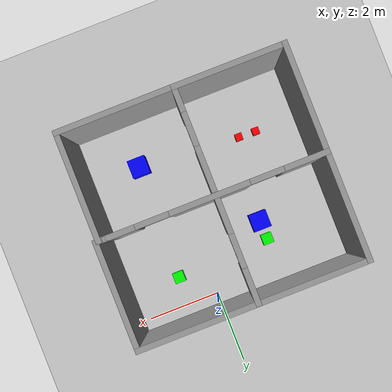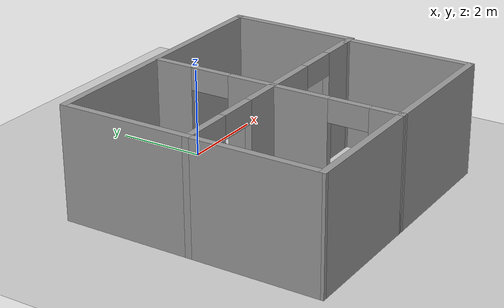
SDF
<sdf version="1.7">
 <world name="default">
  <light name="sun" type="directional">
   <pose>0 0 10 0 -0 0</pose>
   <diffuse>0.8 0.8 0.8 1</diffuse>
   <specular>0.2 0.2 0.2 1</specular>
   <attenuation>
    <range>1000</range>
    <constant>0.9</constant>
    <linear>0.01</linear>
    <quadratic>0.001</quadratic>
   </attenuation>
   <direction>-0.5 0.1 -0.9</direction>
   <spot><inner_angle>0</inner_angle><outer_angle>0</outer_angle><falloff>0</falloff></spot>
  </light>
  <model name="ground_plane">
   <static>1</static>
   <link name="link">
    <collision name="collision">
     <geometry><plane><normal>0 0 1</normal><size>100 100</size></plane></geometry>
     <surface>
      <contact><collide_bitmask>65535</collide_bitmask></contact>
      <friction><ode><mu>100</mu><mu2>50</mu2></ode></friction>
     </surface>
    </collision>
    <visual name="visual">
     <cast_shadows>0</cast_shadows>
     <geometry><plane><normal>0 0 1</normal><size>100 100</size></plane></geometry>
     <material>
      <script><uri>file://media/materials/scripts/gazebo.material</uri><name>Gazebo/Grey</name></script>
     </material>
    </visual>
   </link>
  </model>
  <gravity>0 0 -9.8</gravity>
  <magnetic_field>6e-06 2.3e-05 -4.2e-05</magnetic_field>
  <atmosphere type="adiabatic"/>
  <physics type="ode">
   <max_step_size>0.001</max_step_size>
   <real_time_factor>1</real_time_factor>
   <real_time_update_rate>1000</real_time_update_rate>
  </physics>
  <scene><ambient>0.4 0.4 0.4 1</ambient><background>0.7 0.7 0.7 1</background><shadows>1</shadows></scene>
  <spherical_coordinates>
   <surface_model>EARTH_WGS84</surface_model>
   <latitude_deg>0</latitude_deg>
   <longitude_deg>0</longitude_deg>
   <elevation>0</elevation>
   <heading_deg>0</heading_deg>
  </spherical_coordinates>
  <model name="World_Nav">
   <pose>-0.790089 -2.50358 0 0 -0 0</pose>
   <link name="Wall_0">
    <pose>-0.124911 0.003582 0 0 -0 0</pose>
    <visual name="Wall_0_Visual_0">
     <pose>-2.39688 0 1.25 0 -0 0</pose>
     <geometry><box><size>1.20624 0.15 2.5</size></box></geometry>
     <material>
      <script><uri>file://media/materials/scripts/gazebo.material</uri><name>Gazebo/Grey</name></script>
      <ambient>1 1 1 1</ambient>
     </material>
     <meta><layer>0</layer></meta>
    </visual>
    <collision name="Wall_0_Collision_0">
     <geometry><box><size>1.20624 0.15 2.5</size></box></geometry>
     <pose>-2.39688 0 1.25 0 -0 0</pose>
    </collision>
    <visual name="Wall_0_Visual_1">
     <pose>0.177114 0 1.25 0 -0 0</pose>
     <geometry><box><size>2.14175 0.15 2.5</size></box></geometry>
     <material>
      <script><uri>file://media/materials/scripts/gazebo.material</uri><name>Gazebo/Grey</name></script>
      <ambient>1 1 1 1</ambient>
     </material>
     <meta><layer>0</layer></meta>
    </visual>
    <collision name="Wall_0_Collision_1">
     <geometry><box><size>2.14175 0.15 2.5</size></box></geometry>
     <pose>0.177114 0 1.25 0 -0 0</pose>
    </collision>
    <visual name="Wall_0_Visual_2">
     <pose>2.57399 0 1.25 0 -0 0</pose>
     <geometry><box><size>0.852011 0.15 2.5</size></box></geometry>
     <material>
      <script><uri>file://media/materials/scripts/gazebo.material</uri><name>Gazebo/Grey</name></script>
      <ambient>1 1 1 1</ambient>
     </material>
     <meta><layer>0</layer></meta>
    </visual>
    <collision name="Wall_0_Collision_2">
     <geometry><box><size>0.852011 0.15 2.5</size></box></geometry>
     <pose>2.57399 0 1.25 0 -0 0</pose>
    </collision>
    <visual name="Wall_0_Visual_3">
     <pose>-1.34376 0 2.25 0 -0 0</pose>
     <geometry><box><size>0.9 0.15 0.5</size></box></geometry>
     <material>
      <script><uri>file://media/materials/scripts/gazebo.material</uri><name>Gazebo/Grey</name></script>
      <ambient>1 1 1 1</ambient>
     </material>
     <meta><layer>0</layer></meta>
    </visual>
    <collision name="Wall_0_Collision_3">
     <geometry><box><size>0.9 0.15 0.5</size></box></geometry>
     <pose>-1.34376 0 2.25 0 -0 0</pose>
    </collision>
    <visual name="Wall_0_Visual_4">
     <pose>1.69799 0 2.25 0 -0 0</pose>
     <geometry><box><size>0.9 0.15 0.5</size></box></geometry>
     <material>
      <script><uri>file://media/materials/scripts/gazebo.material</uri><name>Gazebo/Grey</name></script>
      <ambient>1 1 1 1</ambient>
     </material>
     <meta><layer>0</layer></meta>
    </visual>
    <collision name="Wall_0_Collision_4">
     <geometry><box><size>0.9 0.15 0.5</size></box></geometry>
     <pose>1.69799 0 2.25 0 -0 0</pose>
    </collision>
   </link>
   <link name="Wall_11">
    <pose>-0.121575 1.4216 0 0 -0 1.5708</pose>
    <visual name="Wall_11_Visual_0">
     <pose>-0.951195 0 1.25 0 -0 0</pose>
     <geometry><box><size>1.09761 0.15 2.5</size></box></geometry>
     <material>
      <script><uri>file://media/materials/scripts/gazebo.material</uri><name>Gazebo/Grey</name></script>
      <ambient>1 1 1 1</ambient>
     </material>
     <meta><layer>0</layer></meta>
    </visual>
    <collision name="Wall_11_Collision_0">
     <geometry><box><size>1.09761 0.15 2.5</size></box></geometry>
     <pose>-0.951195 0 1.25 0 -0 0</pose>
    </collision>
    <visual name="Wall_11_Visual_1">
     <pose>0.998805 0 1.25 0 -0 0</pose>
     <geometry><box><size>1.00239 0.15 2.5</size></box></geometry>
     <material>
      <script><uri>file://media/materials/scripts/gazebo.material</uri><name>Gazebo/Grey</name></script>
      <ambient>1 1 1 1</ambient>
     </material>
     <meta><layer>0</layer></meta>
    </visual>
    <collision name="Wall_11_Collision_1">
     <geometry><box><size>1.00239 0.15 2.5</size></box></geometry>
     <pose>0.998805 0 1.25 0 -0 0</pose>
    </collision>
    <visual name="Wall_11_Visual_2">
     <pose>0.04761 0 2.25 0 -0 0</pose>
     <geometry><box><size>0.9 0.15 0.5</size></box></geometry>
     <material>
      <script><uri>file://media/materials/scripts/gazebo.material</uri><name>Gazebo/Grey</name></script>
      <ambient>1 1 1 1</ambient>
     </material>
     <meta><layer>0</layer></meta>
    </visual>
    <collision name="Wall_11_Collision_2">
     <geometry><box><size>0.9 0.15 0.5</size></box></geometry>
     <pose>0.04761 0 2.25 0 -0 0</pose>
    </collision>
   </link>
   <link name="Wall_13">
    <collision name="Wall_13_Collision">
     <geometry><box><size>3 0.15 2.5</size></box></geometry>
     <pose>0 0 1.25 0 -0 0</pose>
    </collision>
    <visual name="Wall_13_Visual">
     <pose>0 0 1.25 0 -0 0</pose>
     <geometry><box><size>3 0.15 2.5</size></box></geometry>
     <material>
      <script><uri>file://media/materials/scripts/gazebo.material</uri><name>Gazebo/Grey</name></script>
      <ambient>1 1 1 1</ambient>
     </material>
     <meta><layer>0</layer></meta>
    </visual>
    <pose>-3.04991 -1.42142 0 0 -0 -1.5708</pose>
   </link>
   <link name="Wall_14">
    <collision name="Wall_14_Collision">
     <geometry><box><size>3.07834 0.15 2.5</size></box></geometry>
     <pose>0 0 1.25 0 -0 0</pose>
    </collision>
    <visual name="Wall_14_Visual">
     <pose>0 0 1.25 0 -0 0</pose>
     <geometry><box><size>3.07834 0.15 2.5</size></box></geometry>
     <material>
      <script><uri>file://media/materials/scripts/gazebo.material</uri><name>Gazebo/Grey</name></script>
      <ambient>1 1 1 1</ambient>
     </material>
     <meta><layer>0</layer></meta>
    </visual>
    <pose>-1.58574 -2.84991 0 0 -0 -0.002386</pose>
   </link>
   <link name="Wall_15">
    <collision name="Wall_15_Collision">
     <geometry><box><size>3.25 0.15 2.5</size></box></geometry>
     <pose>0 0 1.25 0 -0 0</pose>
    </collision>
    <visual name="Wall_15_Visual">
     <pose>0 0 1.25 0 -0 0</pose>
     <geometry><box><size>3.25 0.15 2.5</size></box></geometry>
     <material>
      <script><uri>file://media/materials/scripts/gazebo.material</uri><name>Gazebo/Grey</name></script>
      <ambient>1 1 1 1</ambient>
     </material>
     <meta><layer>0</layer></meta>
    </visual>
    <pose>1.42843 -2.8534 0 0 -0 0</pose>
   </link>
   <link name="Wall_17">
    <collision name="Wall_17_Collision">
     <geometry><box><size>3 0.15 2.5</size></box></geometry>
     <pose>0 0 1.25 0 -0 0</pose>
    </collision>
    <visual name="Wall_17_Visual">
     <pose>0 0 1.25 0 -0 0</pose>
     <geometry><box><size>3 0.15 2.5</size></box></geometry>
     <material>
      <script><uri>file://media/materials/scripts/gazebo.material</uri><name>Gazebo/Grey</name></script>
      <ambient>1 1 1 1</ambient>
     </material>
     <meta><layer>0</layer></meta>
    </visual>
    <pose>2.97843 -1.4284 0 0 -0 1.5708</pose>
   </link>
   <link name="Wall_18">
    <collision name="Wall_18_Collision">
     <geometry><box><size>0.328473 0.15 2.5</size></box></geometry>
     <pose>0 0 1.25 0 -0 0</pose>
    </collision>
    <visual name="Wall_18_Visual">
     <pose>0 0 1.25 0 -0 0</pose>
     <geometry><box><size>0.328473 0.15 2.5</size></box></geometry>
     <material>
      <script><uri>file://media/materials/scripts/gazebo.material</uri><name>Gazebo/Grey</name></script>
      <ambient>1 1 1 1</ambient>
     </material>
     <meta><layer>0</layer></meta>
    </visual>
    <pose>2.88926 8.9e-05 0 0 -0 3.10244</pose>
   </link>
   <link name="Wall_21">
    <collision name="Wall_21_Collision">
     <geometry><box><size>3 0.15 2.5</size></box></geometry>
     <pose>0 0 1.25 0 -0 0</pose>
    </collision>
    <visual name="Wall_21_Visual">
     <pose>0 0 1.25 0 -0 0</pose>
     <geometry><box><size>3 0.15 2.5</size></box></geometry>
     <material>
      <script><uri>file://media/materials/scripts/gazebo.material</uri><name>Gazebo/Grey</name></script>
      <ambient>1 1 1 1</ambient>
     </material>
     <meta><layer>0</layer></meta>
    </visual>
    <pose>-3.04991 1.42858 0 0 -0 1.5708</pose>
   </link>
   <link name="Wall_22">
    <collision name="Wall_22_Collision">
     <geometry><box><size>6.25 0.15 2.5</size></box></geometry>
     <pose>0 0 1.25 0 -0 0</pose>
    </collision>
    <visual name="Wall_22_Visual">
     <pose>0 0 1.25 0 -0 0</pose>
     <geometry><box><size>6.25 0.15 2.5</size></box></geometry>
     <material>
      <script><uri>file://media/materials/scripts/gazebo.material</uri><name>Gazebo/Grey</name></script>
      <ambient>1 1 1 1</ambient>
     </material>
     <meta><layer>0</layer></meta>
    </visual>
    <pose>8.9e-05 2.85358 0 0 -0 0</pose>
   </link>
   <link name="Wall_23">
    <collision name="Wall_23_Collision">
     <geometry><box><size>3 0.15 2.5</size></box></geometry>
     <pose>0 0 1.25 0 -0 0</pose>
    </collision>
    <visual name="Wall_23_Visual">
     <pose>0 0 1.25 0 -0 0</pose>
     <geometry><box><size>3 0.15 2.5</size></box></geometry>
     <material>
      <script><uri>file://media/materials/scripts/gazebo.material</uri><name>Gazebo/Grey</name></script>
      <ambient>1 1 1 1</ambient>
     </material>
     <meta><layer>0</layer></meta>
    </visual>
    <pose>3.05009 1.42858 0 0 -0 -1.5708</pose>
   </link>
   <link name="Wall_7">
    <pose>-0.121575 -1.4284 0 0 -0 -1.5708</pose>
    <visual name="Wall_7_Visual_0">
     <pose>-0.819282 0 1.25 0 -0 0</pose>
     <geometry><box><size>1.36144 0.15 2.5</size></box></geometry>
     <material>
      <script><uri>file://media/materials/scripts/gazebo.material</uri><name>Gazebo/Grey</name></script>
      <ambient>1 1 1 1</ambient>
     </material>
     <meta><layer>0</layer></meta>
    </visual>
    <collision name="Wall_7_Collision_0">
     <geometry><box><size>1.36144 0.15 2.5</size></box></geometry>
     <pose>-0.819282 0 1.25 0 -0 0</pose>
    </collision>
    <visual name="Wall_7_Visual_1">
     <pose>1.13072 0 1.25 0 -0 0</pose>
     <geometry><box><size>0.738563 0.15 2.5</size></box></geometry>
     <material>
      <script><uri>file://media/materials/scripts/gazebo.material</uri><name>Gazebo/Grey</name></script>
      <ambient>1 1 1 1</ambient>
     </material>
     <meta><layer>0</layer></meta>
    </visual>
    <collision name="Wall_7_Collision_1">
     <geometry><box><size>0.738563 0.15 2.5</size></box></geometry>
     <pose>1.13072 0 1.25 0 -0 0</pose>
    </collision>
    <visual name="Wall_7_Visual_2">
     <pose>0.311437 0 2.25 0 -0 0</pose>
     <geometry><box><size>0.9 0.15 0.5</size></box></geometry>
     <material>
      <script><uri>file://media/materials/scripts/gazebo.material</uri><name>Gazebo/Grey</name></script>
      <ambient>1 1 1 1</ambient>
     </material>
     <meta><layer>0</layer></meta>
    </visual>
    <collision name="Wall_7_Collision_2">
     <geometry><box><size>0.9 0.15 0.5</size></box></geometry>
     <pose>0.311437 0 2.25 0 -0 0</pose>
    </collision>
   </link>
   <static>1</static>
  </model>
  <model name="Box_medium_green">
   <link name="link_0">
    <inertial>
     <mass>1</mass>
     <inertia>
      <ixx>0.166667</ixx>
      <ixy>0</ixy>
      <ixz>0</ixz>
      <iyy>0.166667</iyy>
      <iyz>0</iyz>
      <izz>0.166667</izz>
     </inertia>
    </inertial>
    <visual name="visual">
     <geometry><box><size>0.3 0.3 0.3</size></box></geometry>
     <material>
      <lighting>1</lighting>
      <script><uri>file://media/materials/scripts/gazebo.material</uri><name>Gazebo/Grey</name></script>
      <shader type="pixel"><normal_map>__default__</normal_map></shader>
      <ambient>0 1 0 0</ambient>
      <diffuse>0.7 0.7 0.7 1</diffuse>
      <specular>0.01 0.01 0.01 1</specular>
      <emissive>0 0 0 1</emissive>
     </material>
    </visual>
    <collision name="collision">
     <geometry><box><size>0.3 0.3 0.3</size></box></geometry>
     <surface>
      <friction>
       <ode><mu>1</mu><mu2>1</mu2><fdir1>0 0 0</fdir1><slip1>0</slip1><slip2>0</slip2></ode>
       <torsional>
        <coefficient>1</coefficient>
        <patch_radius>0</patch_radius>
        <surface_radius>0</surface_radius>
        <use_patch_radius>1</use_patch_radius>
        <ode><slip>0</slip></ode>
       </torsional>
      </friction>
      <bounce><restitution_coefficient>0</restitution_coefficient><threshold>1e+06</threshold></bounce>
      <contact>
       <collide_without_contact>0</collide_without_contact>
       <collide_without_contact_bitmask>1</collide_without_contact_bitmask>
       <collide_bitmask>1</collide_bitmask>
       <ode>
        <soft_cfm>0</soft_cfm>
        <soft_erp>0.2</soft_erp>
        <kp>1e+13</kp>
        <kd>1</kd>
        <max_vel>0.01</max_vel>
        <min_depth>0</min_depth>
       </ode>
       <bullet>
        <split_impulse>1</split_impulse>
        <split_impulse_penetration_threshold>-0.01</split_impulse_penetration_threshold>
        <soft_cfm>0</soft_cfm>
        <soft_erp>0.2</soft_erp>
        <kp>1e+13</kp>
        <kd>1</kd>
       </bullet>
      </contact>
     </surface>
    </collision>
   </link>
   <static>0</static>
   <pose>0.828705 -0.82662 0.15 0 -0 0</pose>
  </model>
  <model name="Box_big_blue">
   <link name="link">
    <inertial>
     <mass>1</mass>
     <inertia>
      <ixx>0.166667</ixx>
      <ixy>0</ixy>
      <ixz>0</ixz>
      <iyy>0.166667</iyy>
      <iyz>0</iyz>
      <izz>0.166667</izz>
     </inertia>
    </inertial>
    <visual name="visual">
     <geometry><box><size>0.5 0.5 0.5</size></box></geometry>
     <material>
      <script><name>Gazebo/Grey</name><uri>file://media/materials/scripts/gazebo.material</uri></script>
      <shader type="pixel"><normal_map>__default__</normal_map></shader>
      <ambient>0 0 1 1</ambient>
      <diffuse>0.7 0.7 0.7 1</diffuse>
      <specular>0.01 0.01 0.01 1</specular>
      <emissive>0 0 0 1</emissive>
     </material>
    </visual>
    <collision name="collision">
     <geometry><box><size>0.5 0.5 0.5</size></box></geometry>
     <surface>
      <friction>
       <ode><mu>1</mu><mu2>1</mu2><fdir1>0 0 0</fdir1><slip1>0</slip1><slip2>0</slip2></ode>
       <torsional>
        <coefficient>1</coefficient>
        <patch_radius>0</patch_radius>
        <surface_radius>0</surface_radius>
        <use_patch_radius>1</use_patch_radius>
        <ode><slip>0</slip></ode>
       </torsional>
      </friction>
      <bounce><restitution_coefficient>0</restitution_coefficient><threshold>1e+06</threshold></bounce>
      <contact>
       <collide_without_contact>0</collide_without_contact>
       <collide_without_contact_bitmask>1</collide_without_contact_bitmask>
       <collide_bitmask>1</collide_bitmask>
       <ode>
        <soft_cfm>0</soft_cfm>
        <soft_erp>0.2</soft_erp>
        <kp>1e+13</kp>
        <kd>1</kd>
        <max_vel>0.01</max_vel>
        <min_depth>0</min_depth>
       </ode>
       <bullet>
        <split_impulse>1</split_impulse>
        <split_impulse_penetration_threshold>-0.01</split_impulse_penetration_threshold>
        <soft_cfm>0</soft_cfm>
        <soft_erp>0.2</soft_erp>
        <kp>1e+13</kp>
        <kd>1</kd>
       </bullet>
      </contact>
     </surface>
    </collision>
   </link>
   <static>0</static>
   <pose>0.744954 -4.05727 0.25 0 -0 0</pose>
  </model>
  <model name="Box_small_red">
   <link name="link_0">
    <inertial>
     <mass>1</mass>
     <inertia>
      <ixx>0.166667</ixx>
      <ixy>0</ixy>
      <ixz>0</ixz>
      <iyy>0.166667</iyy>
      <iyz>0</iyz>
      <izz>0.166667</izz>
     </inertia>
    </inertial>
    <pose>0 -4e-06 0 0 -0 0</pose>
    <visual name="visual">
     <geometry><box><size>0.2 0.2 0.2</size></box></geometry>
     <material>
      <lighting>1</lighting>
      <script><uri>file://media/materials/scripts/gazebo.material</uri><name>Gazebo/Grey</name></script>
      <shader type="pixel"><normal_map>__default__</normal_map></shader>
      <ambient>1 0 0 0</ambient>
      <diffuse>0.7 0.7 0.7 1</diffuse>
      <specular>0.01 0.01 0.01 1</specular>
      <emissive>0 0 0 1</emissive>
     </material>
    </visual>
    <collision name="collision">
     <geometry><box><size>0.2 0.2 0.2</size></box></geometry>
     <surface>
      <friction>
       <ode><mu>1</mu><mu2>1</mu2><fdir1>0 0 0</fdir1><slip1>0</slip1><slip2>0</slip2></ode>
       <torsional>
        <coefficient>1</coefficient>
        <patch_radius>0</patch_radius>
        <surface_radius>0</surface_radius>
        <use_patch_radius>1</use_patch_radius>
        <ode><slip>0</slip></ode>
       </torsional>
      </friction>
      <bounce><restitution_coefficient>0</restitution_coefficient><threshold>1e+06</threshold></bounce>
      <contact>
       <collide_without_contact>0</collide_without_contact>
       <collide_without_contact_bitmask>1</collide_without_contact_bitmask>
       <collide_bitmask>1</collide_bitmask>
       <ode>
        <soft_cfm>0</soft_cfm>
        <soft_erp>0.2</soft_erp>
        <kp>1e+13</kp>
        <kd>1</kd>
        <max_vel>0.01</max_vel>
        <min_depth>0</min_depth>
       </ode>
       <bullet>
        <split_impulse>1</split_impulse>
        <split_impulse_penetration_threshold>-0.01</split_impulse_penetration_threshold>
        <soft_cfm>0</soft_cfm>
        <soft_erp>0.2</soft_erp>
        <kp>1e+13</kp>
        <kd>1</kd>
       </bullet>
      </contact>
     </surface>
    </collision>
   </link>
   <static>0</static>
   <pose>-2.12744 -3.8443 0.099999 -2e-06 5e-06 -2e-06</pose>
  </model>
  <model name="Box_small_red_0">
   <link name="link_0">
    <inertial>
     <mass>1</mass>
     <inertia>
      <ixx>0.166667</ixx>
      <ixy>0</ixy>
      <ixz>0</ixz>
      <iyy>0.166667</iyy>
      <iyz>0</iyz>
      <izz>0.166667</izz>
     </inertia>
    </inertial>
    <pose>0 -4e-06 0 0 -0 0</pose>
    <visual name="visual">
     <geometry><box><size>0.2 0.2 0.2</size></box></geometry>
     <material>
      <lighting>1</lighting>
      <script><uri>file://media/materials/scripts/gazebo.material</uri><name>Gazebo/Grey</name></script>
      <shader type="pixel"><normal_map>__default__</normal_map></shader>
      <ambient>1 0 0 0</ambient>
      <diffuse>0.7 0.7 0.7 1</diffuse>
      <specular>0.01 0.01 0.01 1</specular>
      <emissive>0 0 0 1</emissive>
     </material>
    </visual>
    <collision name="collision">
     <geometry><box><size>0.2 0.2 0.2</size></box></geometry>
     <surface>
      <friction>
       <ode><mu>1</mu><mu2>1</mu2><fdir1>0 0 0</fdir1><slip1>0</slip1><slip2>0</slip2></ode>
       <torsional>
        <coefficient>1</coefficient>
        <patch_radius>0</patch_radius>
        <surface_radius>0</surface_radius>
        <use_patch_radius>1</use_patch_radius>
        <ode><slip>0</slip></ode>
       </torsional>
      </friction>
      <bounce><restitution_coefficient>0</restitution_coefficient><threshold>1e+06</threshold></bounce>
      <contact>
       <collide_without_contact>0</collide_without_contact>
       <collide_without_contact_bitmask>1</collide_without_contact_bitmask>
       <collide_bitmask>1</collide_bitmask>
       <ode>
        <soft_cfm>0</soft_cfm>
        <soft_erp>0.2</soft_erp>
        <kp>1e+13</kp>
        <kd>1</kd>
        <max_vel>0.01</max_vel>
        <min_depth>0</min_depth>
       </ode>
       <bullet>
        <split_impulse>1</split_impulse>
        <split_impulse_penetration_threshold>-0.01</split_impulse_penetration_threshold>
        <soft_cfm>0</soft_cfm>
        <soft_erp>0.2</soft_erp>
        <kp>1e+13</kp>
        <kd>1</kd>
       </bullet>
      </contact>
     </surface>
    </collision>
   </link>
   <static>0</static>
   <pose>-2.62211 -3.82818 0.099999 4e-06 -3e-06 -2e-06</pose>
  </model>
  <model name="Box_medium_green_0">
   <link name="link_0">
    <inertial>
     <mass>1</mass>
     <inertia>
      <ixx>0.166667</ixx>
      <ixy>0</ixy>
      <ixz>0</ixz>
      <iyy>0.166667</iyy>
      <iyz>0</iyz>
      <izz>0.166667</izz>
     </inertia>
    </inertial>
    <visual name="visual">
     <geometry><box><size>0.3 0.3 0.3</size></box></geometry>
     <material>
      <lighting>1</lighting>
      <script><uri>file://media/materials/scripts/gazebo.material</uri><name>Gazebo/Grey</name></script>
      <shader type="pixel"><normal_map>__default__</normal_map></shader>
      <ambient>0 1 0 0</ambient>
      <diffuse>0.7 0.7 0.7 1</diffuse>
      <specular>0.01 0.01 0.01 1</specular>
      <emissive>0 0 0 1</emissive>
     </material>
    </visual>
    <collision name="collision">
     <geometry><box><size>0.3 0.3 0.3</size></box></geometry>
     <surface>
      <friction>
       <ode><mu>1</mu><mu2>1</mu2><fdir1>0 0 0</fdir1><slip1>0</slip1><slip2>0</slip2></ode>
       <torsional>
        <coefficient>1</coefficient>
        <patch_radius>0</patch_radius>
        <surface_radius>0</surface_radius>
        <use_patch_radius>1</use_patch_radius>
        <ode><slip>0</slip></ode>
       </torsional>
      </friction>
      <bounce><restitution_coefficient>0</restitution_coefficient><threshold>1e+06</threshold></bounce>
      <contact>
       <collide_without_contact>0</collide_without_contact>
       <collide_without_contact_bitmask>1</collide_without_contact_bitmask>
       <collide_bitmask>1</collide_bitmask>
       <ode>
        <soft_cfm>0</soft_cfm>
        <soft_erp>0.2</soft_erp>
        <kp>1e+13</kp>
        <kd>1</kd>
        <max_vel>0.01</max_vel>
        <min_depth>0</min_depth>
       </ode>
       <bullet>
        <split_impulse>1</split_impulse>
        <split_impulse_penetration_threshold>-0.01</split_impulse_penetration_threshold>
        <soft_cfm>0</soft_cfm>
        <soft_erp>0.2</soft_erp>
        <kp>1e+13</kp>
        <kd>1</kd>
       </bullet>
      </contact>
     </surface>
    </collision>
   </link>
   <static>0</static>
   <pose>-1.83193 -0.933017 0.15 0 -0 0</pose>
  </model>
  <model name="Box_big_blue_0">
   <link name="link">
    <inertial>
     <mass>1</mass>
     <inertia>
      <ixx>0.166667</ixx>
      <ixy>0</ixy>
      <ixz>0</ixz>
      <iyy>0.166667</iyy>
      <iyz>0</iyz>
      <izz>0.166667</izz>
     </inertia>
    </inertial>
    <visual name="visual">
     <geometry><box><size>0.5 0.5 0.5</size></box></geometry>
     <material>
      <script><name>Gazebo/Grey</name><uri>file://media/materials/scripts/gazebo.material</uri></script>
      <shader type="pixel"><normal_map>__default__</normal_map></shader>
      <ambient>0 0 1 1</ambient>
      <diffuse>0.7 0.7 0.7 1</diffuse>
      <specular>0.01 0.01 0.01 1</specular>
      <emissive>0 0 0 1</emissive>
     </material>
    </visual>
    <collision name="collision">
     <geometry><box><size>0.5 0.5 0.5</size></box></geometry>
     <surface>
      <friction>
       <ode><mu>1</mu><mu2>1</mu2><fdir1>0 0 0</fdir1><slip1>0</slip1><slip2>0</slip2></ode>
       <torsional>
        <coefficient>1</coefficient>
        <patch_radius>0</patch_radius>
        <surface_radius>0</surface_radius>
        <use_patch_radius>1</use_patch_radius>
        <ode><slip>0</slip></ode>
       </torsional>
      </friction>
      <bounce><restitution_coefficient>0</restitution_coefficient><threshold>1e+06</threshold></bounce>
      <contact>
       <collide_without_contact>0</collide_without_contact>
       <collide_without_contact_bitmask>1</collide_without_contact_bitmask>
       <collide_bitmask>1</collide_bitmask>
       <ode>
        <soft_cfm>0</soft_cfm>
        <soft_erp>0.2</soft_erp>
        <kp>1e+13</kp>
        <kd>1</kd>
        <max_vel>0.01</max_vel>
        <min_depth>0</min_depth>
       </ode>
       <bullet>
        <split_impulse>1</split_impulse>
        <split_impulse_penetration_threshold>-0.01</split_impulse_penetration_threshold>
        <soft_cfm>0</soft_cfm>
        <soft_erp>0.2</soft_erp>
        <kp>1e+13</kp>
        <kd>1</kd>
       </bullet>
      </contact>
     </surface>
    </collision>
   </link>
   <static>0</static>
   <pose>-1.80721 -1.4731 0.25 0 -0 0</pose>
  </model>
 </world>
</sdf>
